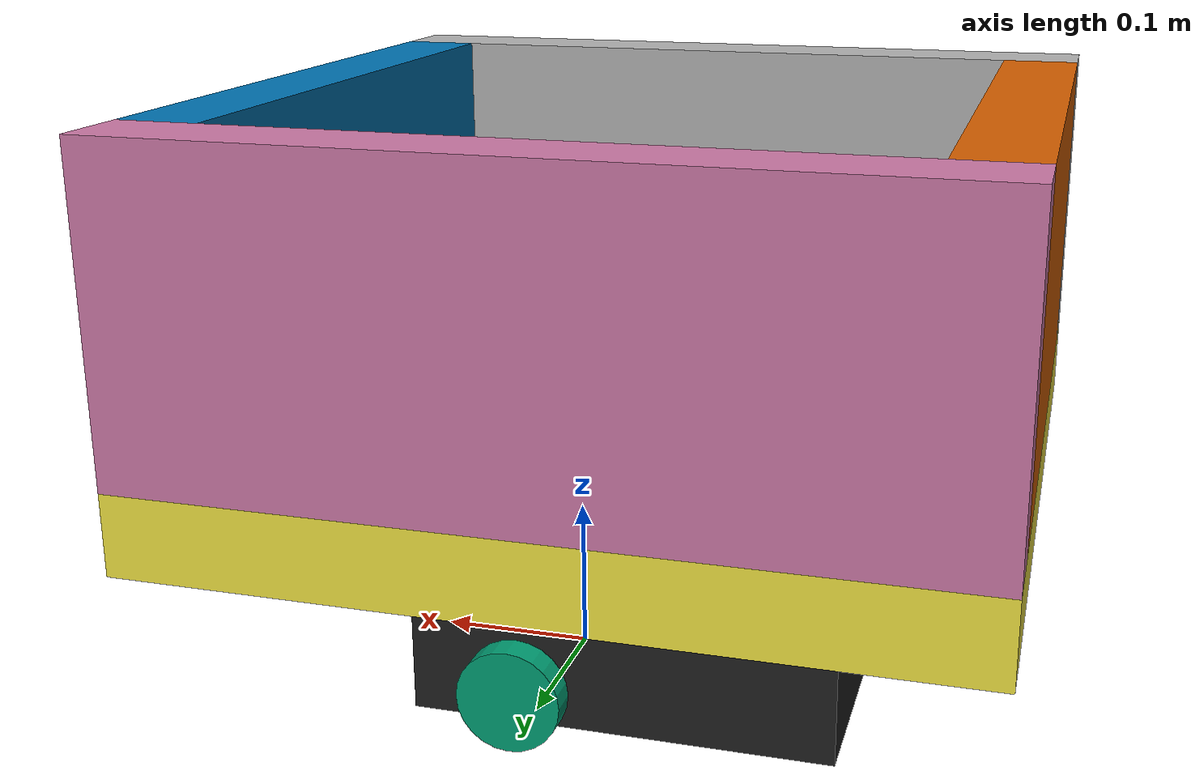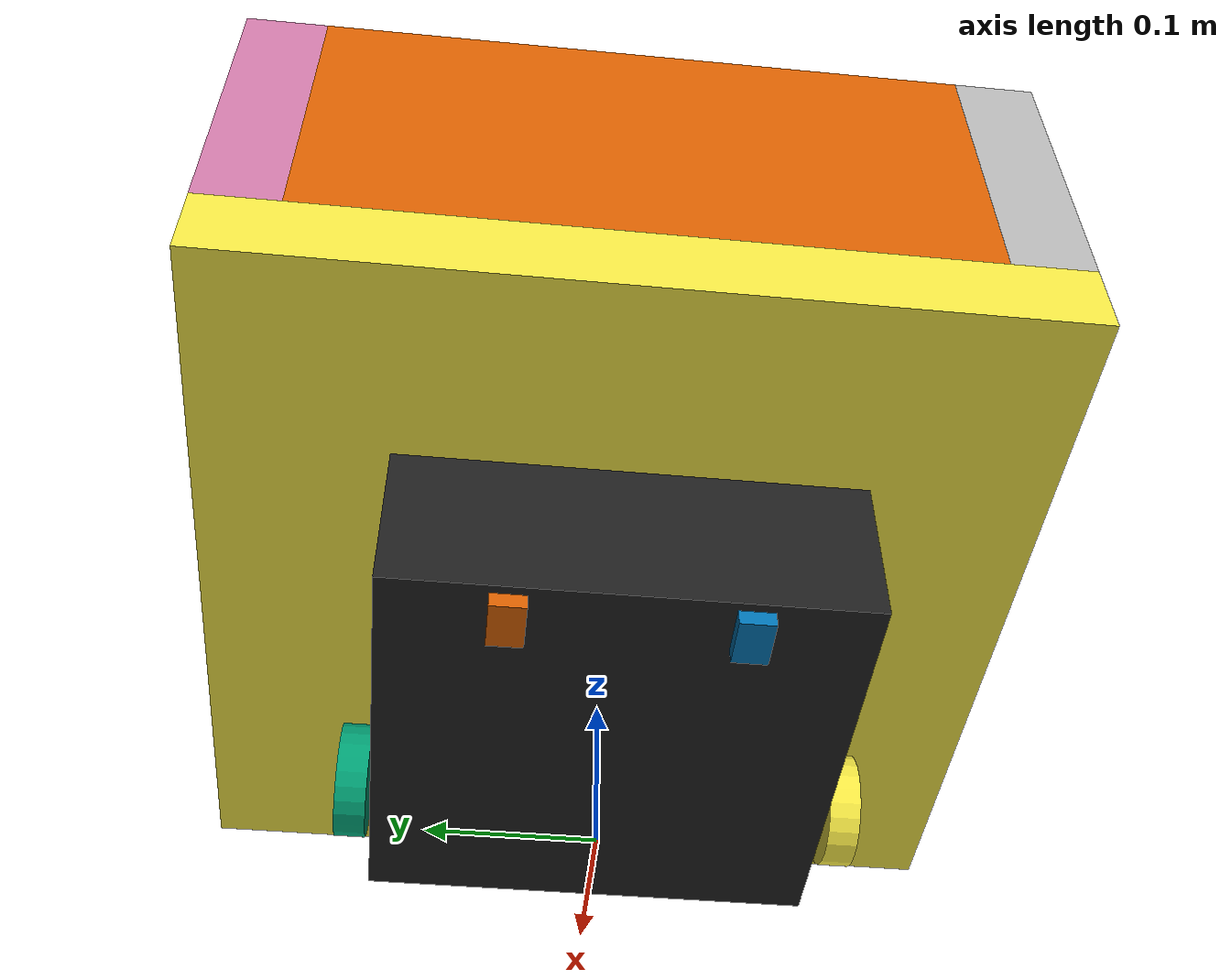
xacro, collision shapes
<?xml version="1.0" ?>
<robot name="turtlebot3_waffle_pi" xmlns:xacro="http://ros.org/wiki/xacro">
  <xacro:include filename="$(find project)/urdf/common_properties.xacro"/>
  <xacro:include filename="$(find project)/urdf/turtlebot3.gazebo.xacro"/>

  <link name="base_footprint"/>

  <joint name="base_joint" type="fixed">
    <parent link="base_footprint"/>
    <child link="base_link" />
    <origin xyz="0 0 0.010" rpy="0 0 0"/>
  </joint>

  <link name="base_link">
    <visual>
      <origin xyz="-0.064 0 0.0" rpy="0 0 0"/>
      <geometry>
        <mesh filename="package://turtlebot3_description/meshes/bases/waffle_pi_base.stl" scale="0.001 0.001 0.001"/>
      </geometry>
      <material name="light_black"/>
    </visual>

    <collision>
      <origin xyz="-0.064 0 0.047" rpy="0 0 0"/>
      <geometry>
        <box size="0.266 0.266 0.094"/>
      </geometry>
    </collision>

    <inertial>
      <origin xyz="0 0 0" rpy="0 0 0"/>
      <mass value="1.3729096e+00"/>
      <inertia ixx="8.7002718e-03" ixy="-4.7576583e-05" ixz="1.1160499e-04"
               iyy="8.6195418e-03" iyz="-3.5422299e-06"
               izz="1.4612727e-02" />
    </inertial>
  </link>

  <joint name="wheel_left_joint" type="continuous">
    <parent link="base_link"/>
    <child link="wheel_left_link"/>
    <origin xyz="0.0 0.144 0.023" rpy="-1.57 0 0"/>
    <axis xyz="0 0 1"/>
  </joint>

  <link name="wheel_left_link">
    <visual>
      <origin xyz="0 0 0" rpy="1.57 0 0"/>
      <geometry>
        <mesh filename="package://turtlebot3_description/meshes/wheels/left_tire.stl" scale="0.001 0.001 0.001"/>
      </geometry>
      <material name="dark"/>
    </visual>

    <collision>
      <origin xyz="0 0 0" rpy="0 0 0"/>
      <geometry>
        <cylinder length="0.018" radius="0.033"/>
      </geometry>
    </collision>

    <inertial>
      <origin xyz="0 0 0" />
      <mass value="2.8498940e-02" />
      <inertia ixx="1.1175580e-05" ixy="-4.2369783e-11" ixz="-5.9381719e-09"
               iyy="1.1192413e-05" iyz="-1.4400107e-11"
               izz="2.0712558e-05" />
      </inertial>
  </link>

  <joint name="wheel_right_joint" type="continuous">
    <parent link="base_link"/>
    <child link="wheel_right_link"/>
    <origin xyz="0.0 -0.144 0.023" rpy="-1.57 0 0"/>
    <axis xyz="0 0 1"/>
  </joint>

  <link name="wheel_right_link">
    <visual>
      <origin xyz="0 0 0" rpy="1.57 0 0"/>
      <geometry>
        <mesh filename="package://turtlebot3_description/meshes/wheels/right_tire.stl" scale="0.001 0.001 0.001"/>
      </geometry>
      <material name="dark"/>
    </visual>

    <collision>
      <origin xyz="0 0 0" rpy="0 0 0"/>
      <geometry>
        <cylinder length="0.018" radius="0.033"/>
      </geometry>
    </collision>

    <inertial>
      <origin xyz="0 0 0" />
      <mass value="2.8498940e-02" />
      <inertia ixx="1.1175580e-05" ixy="-4.2369783e-11" ixz="-5.9381719e-09"
               iyy="1.1192413e-05" iyz="-1.4400107e-11"
               izz="2.0712558e-05" />
      </inertial>
  </link>

  <joint name="caster_back_right_joint" type="fixed">
    <parent link="base_link"/>
    <child link="caster_back_right_link"/>
    <origin xyz="-0.177 -0.064 -0.004" rpy="-1.57 0 0"/>
  </joint>

  <link name="caster_back_right_link">
    <collision>
      <origin xyz="0 0.001 0" rpy="0 0 0"/>
      <geometry>
        <box size="0.030 0.009 0.020"/>
      </geometry>
    </collision>

    <inertial>
      <origin xyz="0 0 0" />
      <mass value="0.005" />
      <inertia ixx="0.001" ixy="0.0" ixz="0.0"
               iyy="0.001" iyz="0.0"
               izz="0.001" />
    </inertial>
  </link>

  <joint name="caster_back_left_joint" type="fixed">
    <parent link="base_link"/>
    <child link="caster_back_left_link"/>
    <origin xyz="-0.177 0.064 -0.004" rpy="-1.57 0 0"/>
  </joint>

  <link name="caster_back_left_link">
    <collision>
      <origin xyz="0 0.001 0" rpy="0 0 0"/>
      <geometry>
        <box size="0.030 0.009 0.020"/>
      </geometry>
    </collision>

    <inertial>
      <origin xyz="0 0 0" />
      <mass value="0.005" />
      <inertia ixx="0.001" ixy="0.0" ixz="0.0"
               iyy="0.001" iyz="0.0"
               izz="0.001" />
    </inertial>
  </link>

  <joint name="imu_joint" type="fixed">
    <parent link="base_link"/>
    <child link="imu_link"/>
    <origin xyz="0.0 0 0.068" rpy="0 0 0"/>
  </joint>

  <link name="imu_link"/>

  <joint name="scan_joint" type="fixed">
    <parent link="base_link"/>
    <child link="base_scan"/>
    <origin xyz="-0.064 0 0.122" rpy="0 0 0"/>
  </joint>

  <link name="base_scan">
    <visual>
      <origin xyz="0 0 0.0" rpy="0 0 0"/>
      <geometry>
        <mesh filename="package://turtlebot3_description/meshes/sensors/lds.stl" scale="0.001 0.001 0.001"/>
      </geometry>
      <material name="dark"/>
    </visual>

    <collision>
      <origin xyz="0.015 0 -0.0065" rpy="0 0 0"/>
      <geometry>
        <cylinder length="0.0315" radius="0.055"/>
      </geometry>
    </collision>

    <inertial>
      <mass value="0.114" />
      <origin xyz="0 0 0" />
      <inertia ixx="0.001" ixy="0.0" ixz="0.0"
               iyy="0.001" iyz="0.0"
               izz="0.001" />
    </inertial>
  </link>

  <joint name="camera_joint" type="fixed">
    <origin xyz="0.073 -0.011 0.084" rpy="0 0 0"/>
    <parent link="base_link"/>
    <child link="camera_link"/>
  </joint>

  <link name="camera_link">
    <collision>
      <origin xyz="0.005 0.011 0.013" rpy="0 0 0"/>
      <geometry>
        <box size="0.015 0.030 0.027"/>
      </geometry>
    </collision>
  </link>

  <joint name="camera_rgb_joint" type="fixed">
    <origin xyz="0.003 0.011 0.009" rpy="0 0 0"/>
    <parent link="camera_link"/>
    <child link="camera_rgb_frame"/>
  </joint>
  <link name="camera_rgb_frame"/>

  <joint name="camera_rgb_optical_joint" type="fixed">
    <origin xyz="0 0 0" rpy="-1.57 0 -1.57"/>
    <parent link="camera_rgb_frame"/>
    <child link="camera_rgb_optical_frame"/>
  </joint>
  <link name="camera_rgb_optical_frame"/>

  <link name="link1">
	  <visual>
		  <geometry>
			  <box size="0.5 0.5 0.05"/>
		  </geometry>
	  </visual>
	  <collision>
		  <geometry>
			  <box size="0.5 0.5 0.05"/>
		  </geometry>
	  </collision>
	  <inertial>
		  <mass value="1"/>
		  <inertia ixx="0.02104167" ixy="0" ixz="0"
			   iyy="0.03416667" iyz="0"
			   izz="0.01354167"/>
	  </inertial>
  </link>

  <joint name="link1_joint" type="fixed">
	  <parent link="base_link"/>
	  <child link="link1"/>
	  <origin xyz="-0.05 0 0.15"/>
  </joint>

  <link name="front_wall">
	  <visual>
		  <geometry>
			  <box size="0.05 0.4 0.2"/>
		  </geometry>
	  </visual>
	  <collision>
		  <geometry>
			  <box size="0.05 0.4 0.2"/>
		  </geometry>
	  </collision>
	  <inertial>
		  <mass value="1"/>
		  <inertia ixx="0.02104167" ixy="0" ixz="0"
			   iyy="0.03416667" iyz="0"
			   izz="0.01354167"/>
	  </inertial>
  </link>

  <joint name="front_wall_joint" type="fixed">
	  <parent link="link1"/>
	  <child link="front_wall"/>
	  <origin xyz="0.225 0 0.125"/>
  </joint>

  <link name="back_wall">
	  <visual>
		  <geometry>
			  <box size="0.05 0.4 0.2"/>
		  </geometry>
	  </visual>
	  <collision>
		  <geometry>
			  <box size="0.05 0.4 0.2"/>
		  </geometry>
	  </collision>
	  <inertial>
		  <mass value="1"/>
		  <inertia ixx="0.02104167" ixy="0" ixz="0"
			   iyy="0.03416667" iyz="0"
			   izz="0.01354167"/>
	  </inertial>
  </link>

  <joint name="back_wall_joint" type="fixed">
	  <parent link="link1"/>
	  <child link="back_wall"/>
	  <origin xyz="-0.225 0 0.125"/>
  </joint>

  <link name="right_wall">
	  <visual>
		  <geometry>
			  <box size="0.5 0.05 0.2"/>
		  </geometry>
	  </visual>
	  <collision>
		  <geometry>
			  <box size="0.5 0.05 0.2"/>
		  </geometry>
	  </collision>
	  <inertial>
		  <mass value="1"/>
		  <inertia ixx="0.02104167" ixy="0" ixz="0"
			   iyy="0.03416667" iyz="0"
			   izz="0.01354167"/>
	  </inertial>
  </link>

  <joint name="right_wall_joint" type="fixed">
	  <parent link="link1"/>
	  <child link="right_wall"/>
	  <origin xyz="0 0.225 0.125"/>
  </joint>

  <link name="left_wall">
	  <visual>
		  <geometry>
			  <box size="0.5 0.05 0.2"/>
		  </geometry>
	  </visual>
	  <collision>
		  <geometry>
			  <box size="0.5 0.05 0.2"/>
		  </geometry>
	  </collision>
	  <inertial>
		  <mass value="1"/>
		  <inertia ixx="0.02104167" ixy="0" ixz="0"
			   iyy="0.03416667" iyz="0"
			   izz="0.01354167"/>
	  </inertial>
  </link>

  <joint name="left_wall_joint" type="fixed">
	  <parent link="link1"/>
	  <child link="left_wall"/>
	  <origin xyz="0 -0.225 0.125"/>
  </joint>

</robot>
